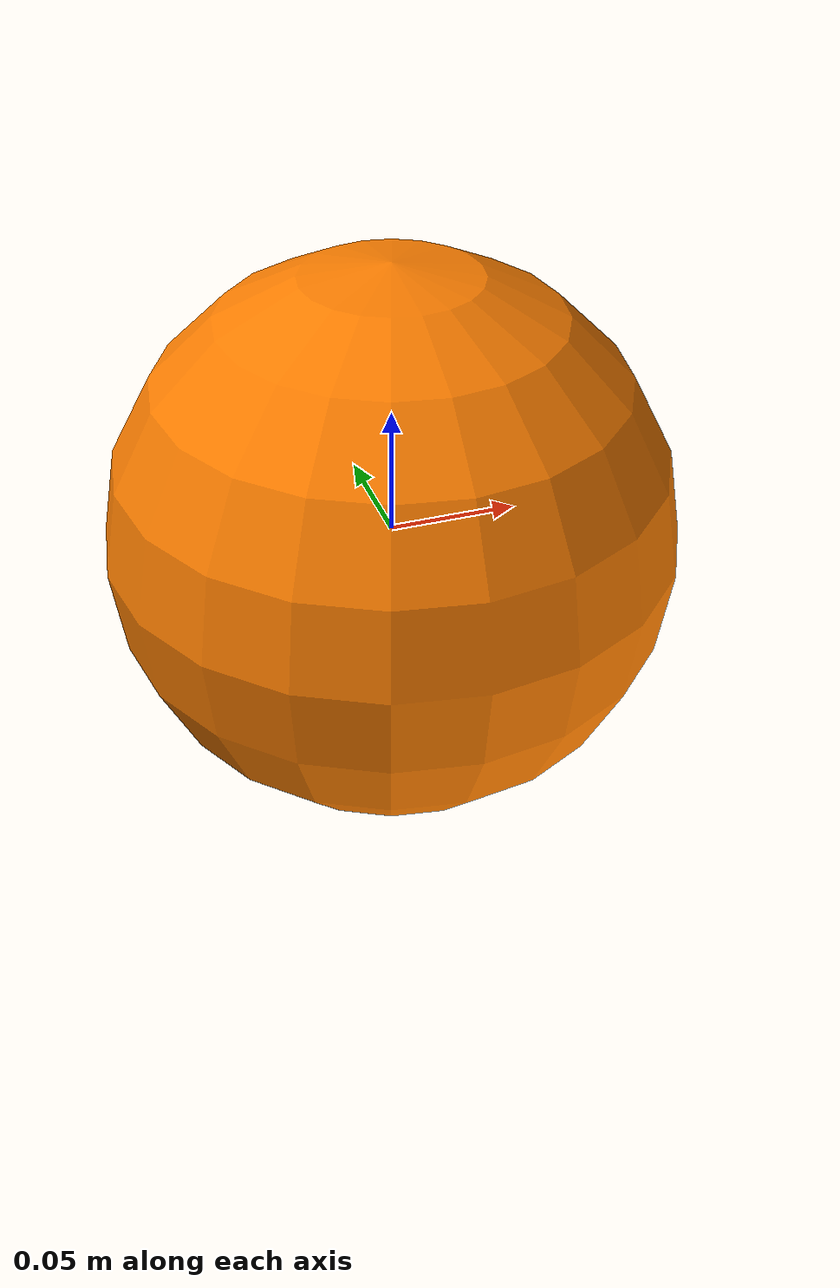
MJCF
<mujoco model="ball">
  <compiler angle="radian"/>

  <default>
    <default class="ball">
      <geom type="sphere" size="0.11" rgba="1.0 0.5 0.0 1.0" condim="3" friction="0.5 0.005 0.001"/>
    </default>
  </default>

  <worldbody>
    <body name="ball" childclass="ball">
      <freejoint/>
      <inertial mass="0.43" pos="0 0 0" fullinertia="0.00208 0.00208 0.00208 0 0 0"/>
      <geom name="ball_geom"/>
    </body>
  </worldbody>
</mujoco>
